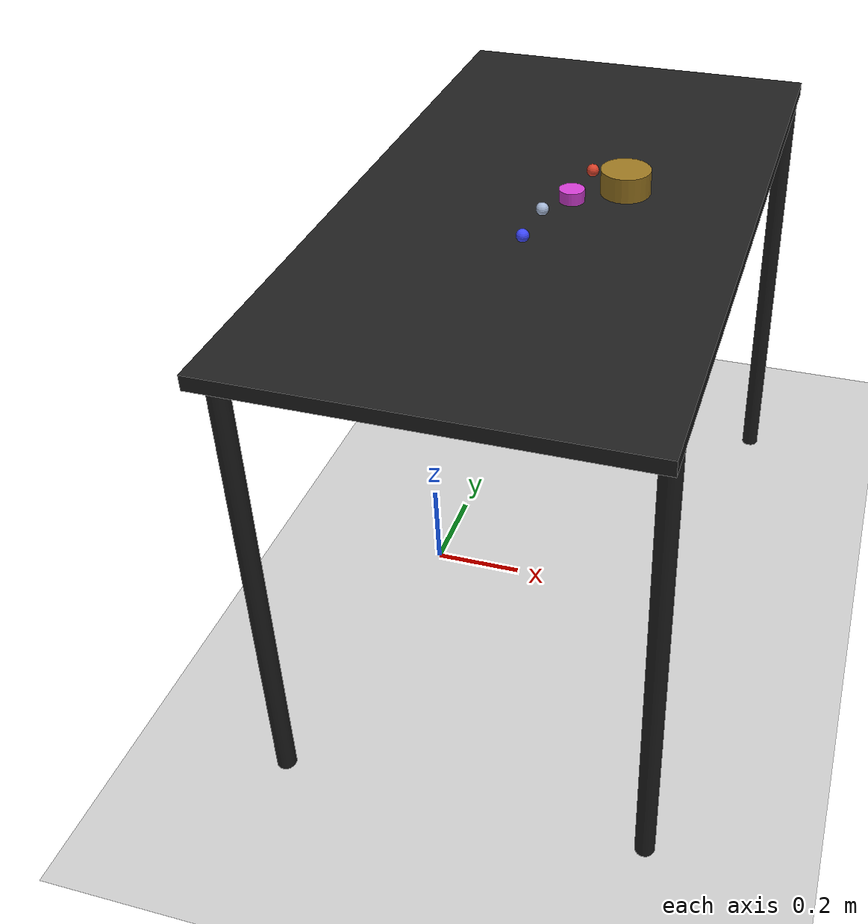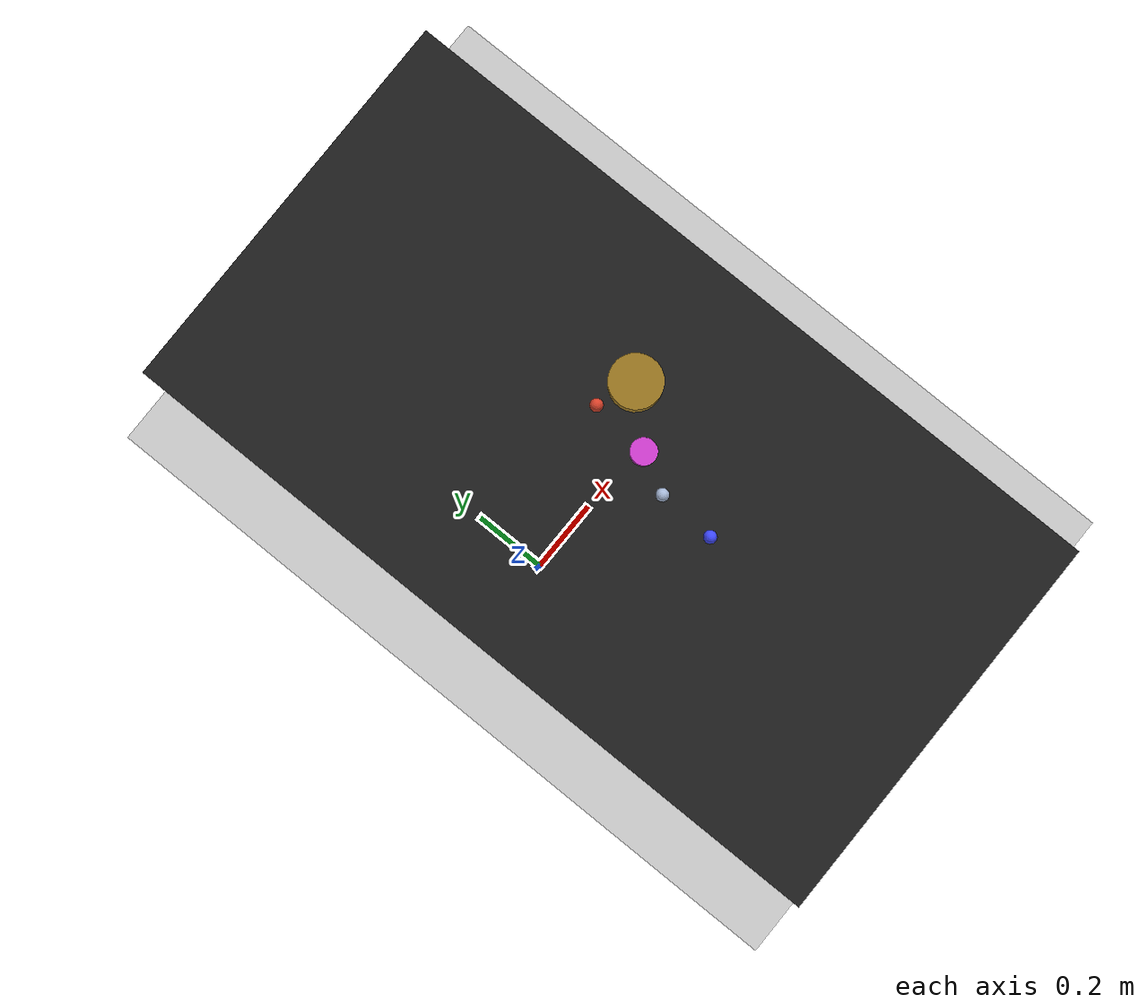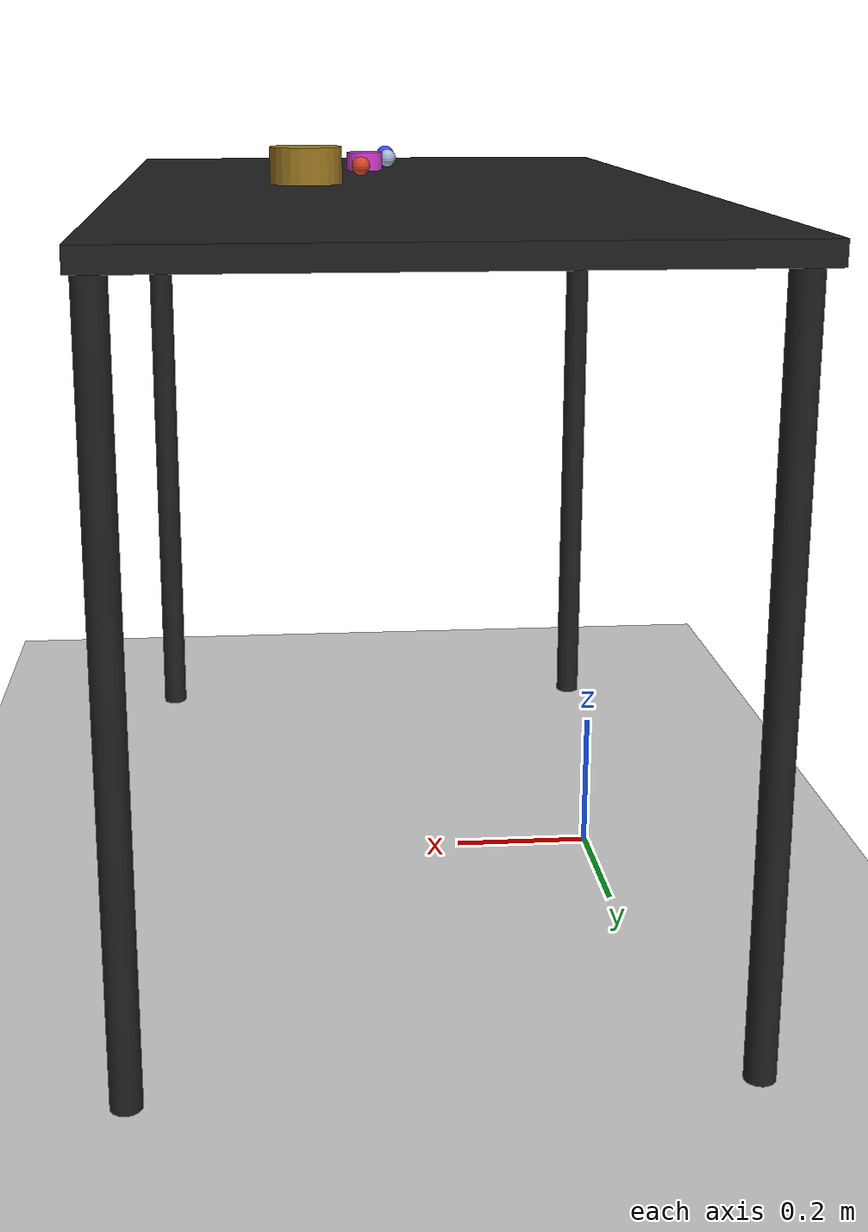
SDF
<?xml version="1.0" ?>
<sdf version="1.6">
  <world name="arm_world">
    <plugin filename="gz-sim-physics-system" name="gz::sim::systems::Physics">
      <engine>
        <filename>libgz-physics-bullet-featherstone-plugin.so</filename>
      </engine>
    </plugin>
    <plugin filename="gz-sim-user-commands-system" name="gz::sim::systems::UserCommands"/>
    <plugin filename="gz-sim-scene-broadcaster-system" name="gz::sim::systems::SceneBroadcaster"/>
    <plugin filename="gz-sim-sensors-system" name="gz::sim::systems::Sensors">
      <render_engine>ogre2</render_engine>
    </plugin>
    <gravity>0.0 0.0 -9.8</gravity>
    <scene>
      <shadows>false</shadows>
    </scene>
    <gui>
      <camera name="user_camera">
        <pose>0.75 -0.75 1.4 0 0.29 2.21</pose>
      </camera>
    </gui>
    <include>
      <uri>https://fuel.gazebosim.org/1.0/OpenRobotics/models/Sun</uri>
    </include>
    <model name="table">
      <static>true</static>
      <include>
        <uri>model://table</uri>
      </include>
      <pose>0.29 0 0 0 0 1.5708</pose>
    </model>
    <model name="ground_plane">
      <static>true</static>
      <link name="link">
        <collision name="collision">
          <geometry>
            <plane>
              <normal>0 0 1</normal>
            </plane>
          </geometry>
          <surface>
            <friction>
              <ode>
                <mu>1.0</mu>
                <mu2>1.0</mu2>
              </ode>
            </friction>
          </surface>
        </collision>
        <visual name="visual">
          <geometry>
            <plane>
              <normal>0 0 1</normal>
              <size>100 100</size>
            </plane>
          </geometry>
          <material>
            <ambient>0.8 0.8 0.8 1</ambient>
            <diffuse>0.8 0.8 0.8 1</diffuse>
            <specular>0.8 0.8 0.8 1</specular>
          </material>
        </visual>
      </link>
    </model>
    <model name="cylinder_l_0">
      <pose>0.426 0.05 1.05 0 0 4.78</pose>
      <link name="cylinder_l_0_link">
        <collision name="cylinder_l_0_collision">
          <geometry>
            <cylinder>
              <radius>0.05</radius>
              <length>0.05</length>
            </cylinder>
          </geometry>
        </collision>
        <visual name="cylinder_l_0_visual">
          <geometry>
            <cylinder>
              <radius>0.05</radius>
              <length>0.05</length>
            </cylinder>
          </geometry>
          <material>
            <ambient>0.61 0.47 0.13 1</ambient>
            <diffuse>0.61 0.47 0.13 1</diffuse>
          </material>
        </visual>
        <velocity_decay>
          <linear>1</linear>
          <angular>1</angular>
        </velocity_decay>
      </link>
    </model>
    <model name="sphere_s_1">
      <pose>0.302 -0.11 1.05 0 0 5.83</pose>
      <link name="sphere_s_1_link">
        <collision name="sphere_s_1_collision">
          <geometry>
            <sphere>
              <radius>0.0125</radius>
            </sphere>
          </geometry>
        </collision>
        <visual name="sphere_s_1_visual">
          <geometry>
            <sphere>
              <radius>0.0125</radius>
            </sphere>
          </geometry>
          <material>
            <ambient>0.65 0.72 0.84 1</ambient>
            <diffuse>0.65 0.72 0.84 1</diffuse>
          </material>
        </visual>
        <velocity_decay>
          <linear>1</linear>
          <angular>1</angular>
        </velocity_decay>
      </link>
    </model>
    <model name="sphere_s_2">
      <pose>0.297 -0.221 1.05 0 0 2.82</pose>
      <link name="sphere_s_2_link">
        <collision name="sphere_s_2_collision">
          <geometry>
            <sphere>
              <radius>0.0125</radius>
            </sphere>
          </geometry>
        </collision>
        <visual name="sphere_s_2_visual">
          <geometry>
            <sphere>
              <radius>0.0125</radius>
            </sphere>
          </geometry>
          <material>
            <ambient>0.24 0.28 0.99 1</ambient>
            <diffuse>0.24 0.28 0.99 1</diffuse>
          </material>
        </visual>
        <velocity_decay>
          <linear>1</linear>
          <angular>1</angular>
        </velocity_decay>
      </link>
    </model>
    <model name="cylinder_m_3">
      <pose>0.34 -0.037 1.05 0 0 0.54</pose>
      <link name="cylinder_m_3_link">
        <collision name="cylinder_m_3_collision">
          <geometry>
            <cylinder>
              <radius>0.025</radius>
              <length>0.025</length>
            </cylinder>
          </geometry>
        </collision>
        <visual name="cylinder_m_3_visual">
          <geometry>
            <cylinder>
              <radius>0.025</radius>
              <length>0.025</length>
            </cylinder>
          </geometry>
          <material>
            <ambient>0.83 0.24 0.83 1</ambient>
            <diffuse>0.83 0.24 0.83 1</diffuse>
          </material>
        </visual>
        <velocity_decay>
          <linear>1</linear>
          <angular>1</angular>
        </velocity_decay>
      </link>
    </model>
    <model name="sphere_s_4">
      <pose>0.352 0.079 1.05 0 0 3.43</pose>
      <link name="sphere_s_4_link">
        <collision name="sphere_s_4_collision">
          <geometry>
            <sphere>
              <radius>0.0125</radius>
            </sphere>
          </geometry>
        </collision>
        <visual name="sphere_s_4_visual">
          <geometry>
            <sphere>
              <radius>0.0125</radius>
            </sphere>
          </geometry>
          <material>
            <ambient>0.84 0.25 0.16 1</ambient>
            <diffuse>0.84 0.25 0.16 1</diffuse>
          </material>
        </visual>
        <velocity_decay>
          <linear>1</linear>
          <angular>1</angular>
        </velocity_decay>
      </link>
    </model>
  </world>
</sdf>

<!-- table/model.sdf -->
<sdf version="1.5">
  <model name="table">
    <static>true</static>
    <link name="link">
      <collision name="surface">
        <pose>0 0 1.0 0 0 0</pose>
        <geometry>
          <box>
            <size>1.5 0.8 0.03</size>
          </box>
        </geometry>
        <surface>
          <friction>
            <ode>
              <mu>0.6</mu>
              <mu2>0.6</mu2>
            </ode>
          </friction>
        </surface>
      </collision>
      <visual name="surface">
        <pose>0 0 1.0 0 0 0</pose>
        <geometry>
          <box>
            <size>1.5 0.8 0.03</size>
          </box>
        </geometry>
        <material>
          <script>
            <uri>file://media/materials/scripts/gazebo.material</uri>
            <name>Gazebo/Black</name>
          </script>
        </material>
      </visual>
      <collision name="front_left_leg">
        <pose>0.68 0.38 0.5 0 0 0</pose>
        <geometry>
          <cylinder>
            <radius>0.02</radius>
            <length>1.0</length>
          </cylinder>
        </geometry>
      </collision>
      <visual name="front_left_leg">
        <pose>0.68 0.38 0.5 0 0 0</pose>
        <geometry>
          <cylinder>
            <radius>0.02</radius>
            <length>1.0</length>
          </cylinder>
        </geometry>
        <material>
          <script>
            <uri>file://media/materials/scripts/gazebo.material</uri>
            <name>Gazebo/Black</name>
          </script>
        </material>
      </visual>
      <collision name="front_right_leg">
        <pose>0.68 -0.38 0.5 0 0 0</pose>
        <geometry>
          <cylinder>
            <radius>0.02</radius>
            <length>1.0</length>
          </cylinder>
        </geometry>
      </collision>
      <visual name="front_right_leg">
        <pose>0.68 -0.38 0.5 0 0 0</pose>
        <geometry>
          <cylinder>
            <radius>0.02</radius>
            <length>1.0</length>
          </cylinder>
        </geometry>
        <material>
          <script>
            <uri>file://media/materials/scripts/gazebo.material</uri>
            <name>Gazebo/Black</name>
          </script>
        </material>
      </visual>
      <collision name="back_right_leg">
        <pose>-0.68 -0.38 0.5 0 0 0</pose>
        <geometry>
          <cylinder>
            <radius>0.02</radius>
            <length>1.0</length>
          </cylinder>
        </geometry>
      </collision>
      <visual name="back_right_leg">
        <pose>-0.68 -0.38 0.5 0 0 0</pose>
        <geometry>
          <cylinder>
            <radius>0.02</radius>
            <length>1.0</length>
          </cylinder>
        </geometry>
        <material>
          <script>
            <uri>file://media/materials/scripts/gazebo.material</uri>
            <name>Gazebo/Black</name>
          </script>
        </material>
      </visual>
      <collision name="back_left_leg">
        <pose>-0.68 0.38 0.5 0 0 0</pose>
        <geometry>
          <cylinder>
            <radius>0.02</radius>
            <length>1.0</length>
          </cylinder>
        </geometry>
      </collision>
      <visual name="back_left_leg">
        <pose>-0.68 0.38 0.5 0 0 0</pose>
        <geometry>
          <cylinder>
            <radius>0.02</radius>
            <length>1.0</length>
          </cylinder>
        </geometry>
        <material>
          <script>
            <uri>file://media/materials/scripts/gazebo.material</uri>
            <name>Gazebo/Black</name>
          </script>
        </material>
      </visual>
    </link>
  </model>
</sdf>
